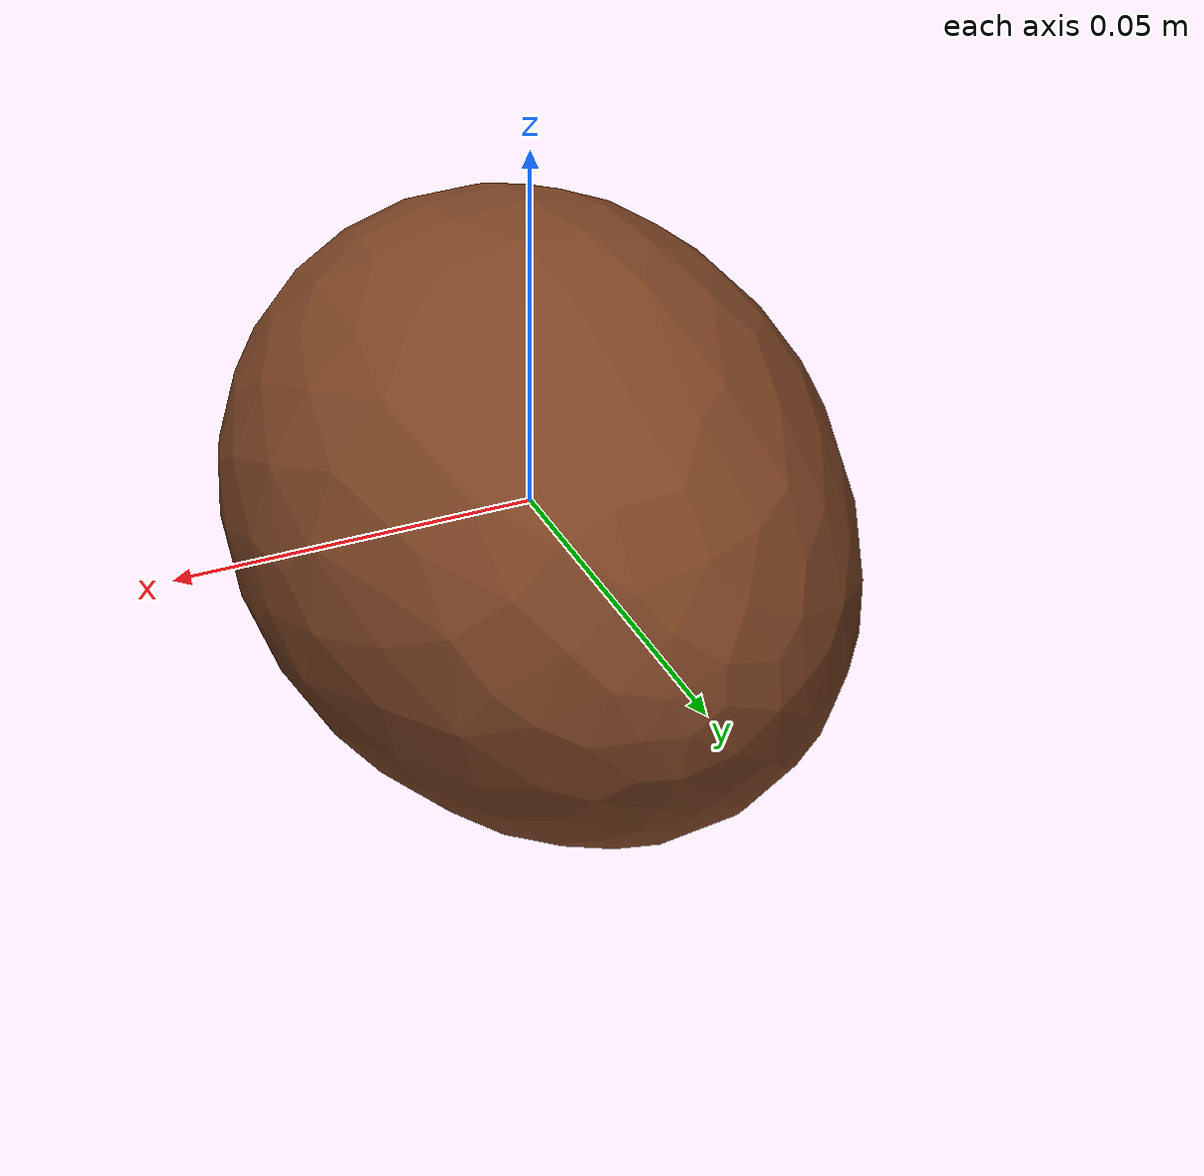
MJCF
<mujoco model="Egg_30">
  <compiler autolimits="true" boundmass="0.01" angle="radian"/>
  <default>
    <default class="/">
      <default class="__VISUAL_MJT__">
        <geom contype="0" conaffinity="0" group="0"/>
      </default>
      <default class="__STRUCTURAL_MJT__">
        <geom contype="8" conaffinity="15" group="4" friction="0.90000000000000002 0.90000000000000002 0.001" solref="0.025000000000000001 1" solimp="0.998 0.998 0.001"/>
      </default>
      <default class="__DYNAMIC_MJT__">
        <geom contype="1" conaffinity="15" group="4" friction="0.90000000000000002 0.90000000000000002 0.001" solref="0.025000000000000001 1" solimp="0.998 0.998 0.001"/>
      </default>
    </default>
  </default>
  <asset>
    <material name="material_Egg6_Mat" class="/" specular="0.5" shininess="0.5" rgba="0.48529410000000001 0.26198510000000003 0.13916519999999999 1"/>
    <mesh name="Egg_30_egg_30" class="/" file="Egg_30_egg_30/Egg_30_egg_30.obj" scale="1 1 1"/>
  </asset>
  <worldbody>
    <body name="Egg_30">
      <joint name="Egg_30_free" class="/" type="free" pos="0 0 0" axis="0 0 1" stiffness="0" range="0 0" armature="0" damping="0.10000000000000001" frictionloss="0"/>
      <body name="Egg_30_egg_30" pos="-0 0 -0.00014999999999999999" quat="1 0 0 0">
        <geom name="Egg_30_egg_30" class="__VISUAL_MJT__" type="mesh" material="material_Egg6_Mat" shellinertia="true" mesh="Egg_30_egg_30"/>
        <geom name="Egg_30_PrimitiveCollider_0" class="__DYNAMIC_MJT__" type="capsule" size="0.039161495864391327 0.015689186751842499" rgba="0 1 0 1" pos="-0 0 0" quat="0.70710678118654757 0.70710678118654746 0 0"/>
      </body>
    </body>
  </worldbody>
</mujoco>
